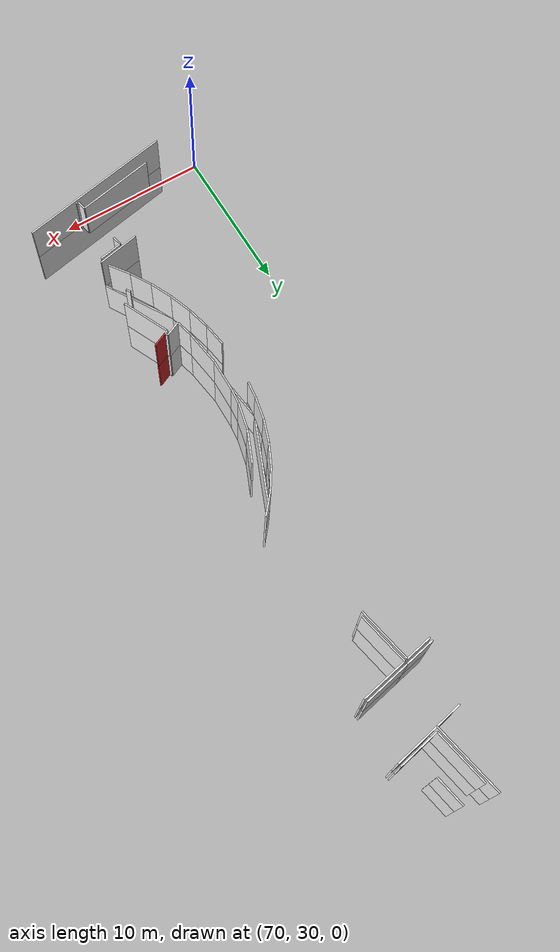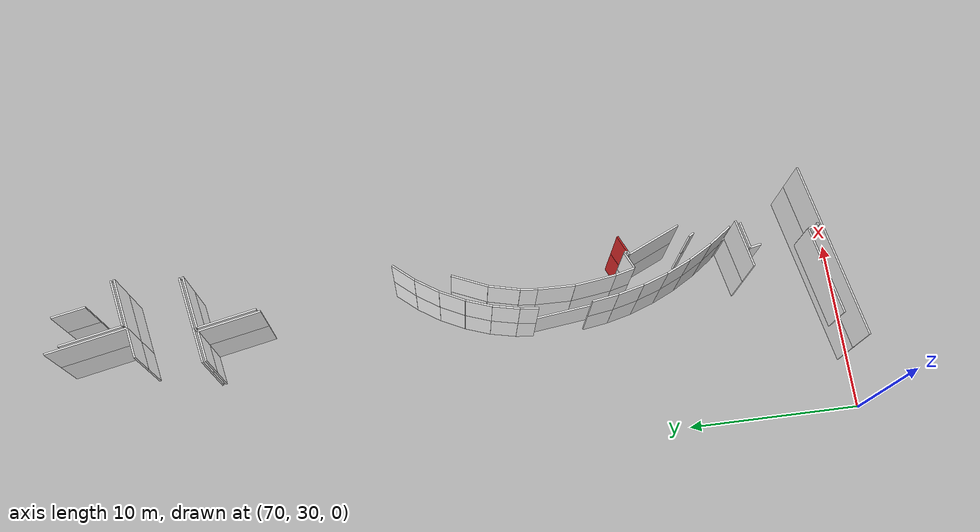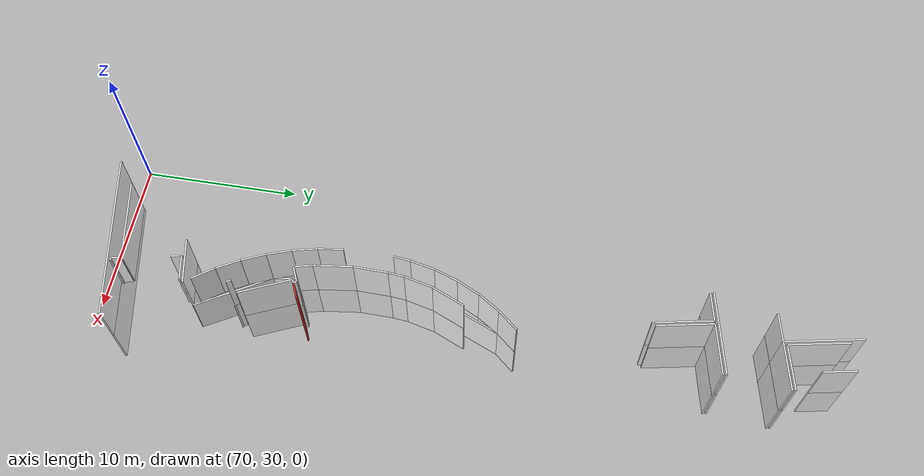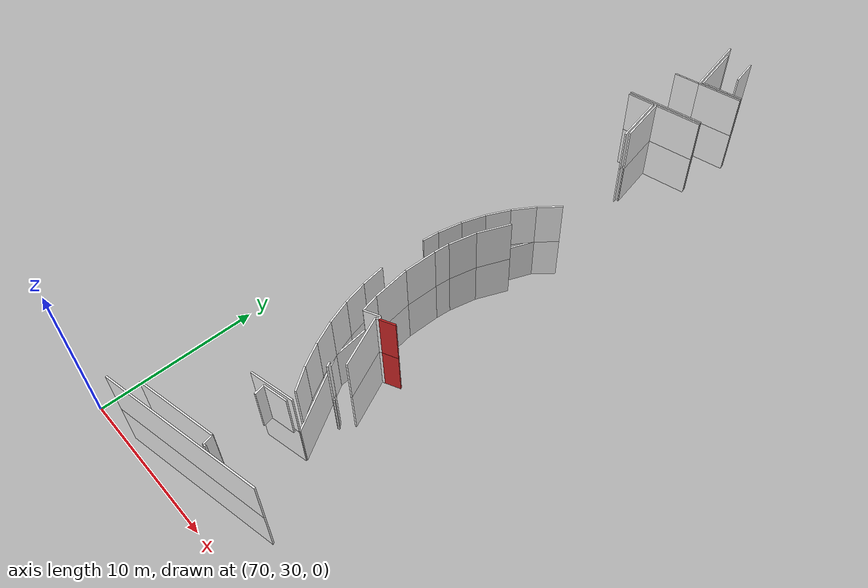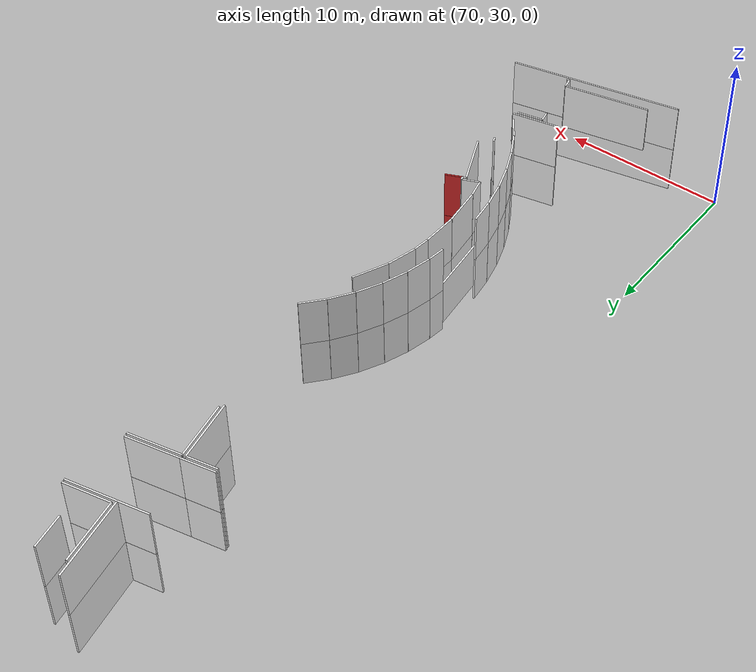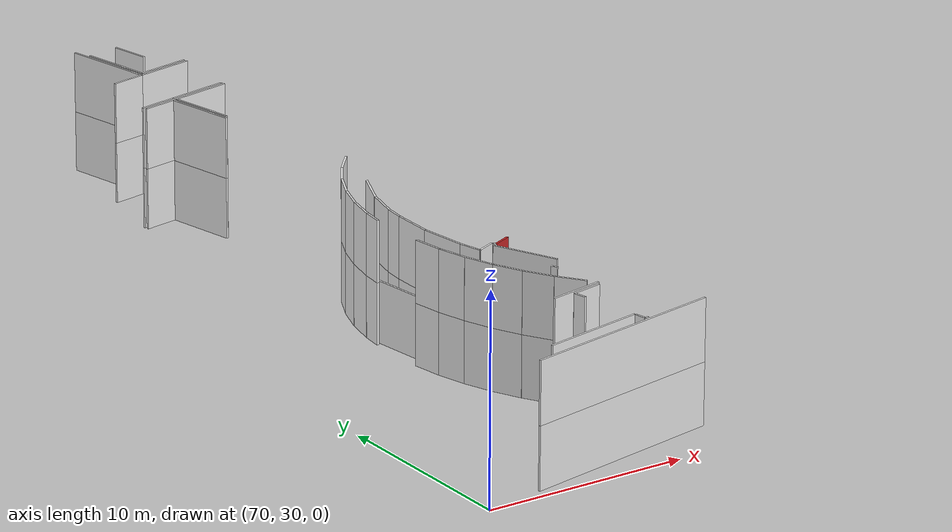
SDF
<sdf version="1.6">
 <world name="default">
  <model name="wall_79.8_43.2_1.5">
   <static>true</static>
   <pose>79.82500000001164 43.18500000005588 1.5 0 0 0.42331075582642225</pose>
   <link name="link">
    <visual name="visual">
     <geometry><box><size>0.9980981916532635 0.1 3</size></box></geometry>
     <material>
      <script><uri>file://media/materials/scripts/gazebo.material</uri><name>Gazebo/Red</name></script>
     </material>
    </visual>
    <collision name="collision"><geometry><box><size>0.9980981916532635 0.1 3</size></box></geometry></collision>
   </link>
  </model>
  <model name="wall_79.8_43.2_4.5">
   <static>true</static>
   <pose>79.82500000001164 43.18500000005588 4.5 0 0 0.42331075582642225</pose>
   <link name="link">
    <visual name="visual">
     <geometry><box><size>0.9980981916532635 0.1 3</size></box></geometry>
     <material>
      <script><uri>file://media/materials/scripts/gazebo.material</uri><name>Gazebo/Red</name></script>
     </material>
    </visual>
    <collision name="collision"><geometry><box><size>0.9980981916532635 0.1 3</size></box></geometry></collision>
   </link>
  </model>
  <model name="wall_79.7_74.2_1.5">
   <static>true</static>
   <pose>79.72999999998137 74.17500000004657 1.5 0 0 1.76520086863083</pose>
   <link name="link">
    <visual name="visual">
     <geometry><box><size>1.967053634411279 0.1 3</size></box></geometry>
     <material>
      <script><uri>file://media/materials/scripts/gazebo.material</uri><name>Gazebo/White</name></script>
     </material>
    </visual>
    <collision name="collision"><geometry><box><size>1.967053634411279 0.1 3</size></box></geometry></collision>
   </link>
  </model>
  <model name="wall_78.2_73.0_1.5">
   <static>true</static>
   <pose>78.22500000000582 73.0250000001397 1.5 0 0 -1.374478352720188</pose>
   <link name="link">
    <visual name="visual">
     <geometry><box><size>3.6399175813241733 0.1 3</size></box></geometry>
     <material>
      <script><uri>file://media/materials/scripts/gazebo.material</uri><name>Gazebo/White</name></script>
     </material>
    </visual>
    <collision name="collision"><geometry><box><size>3.6399175813241733 0.1 3</size></box></geometry></collision>
   </link>
  </model>
  <model name="wall_79.9_71.5_1.5">
   <static>true</static>
   <pose>79.93000000002212 71.50500000012107 1.5 0 0 0.19383178298877288</pose>
   <link name="link">
    <visual name="visual">
     <geometry><box><size>2.7515268488324223 0.1 3</size></box></geometry>
     <material>
      <script><uri>file://media/materials/scripts/gazebo.material</uri><name>Gazebo/White</name></script>
     </material>
    </visual>
    <collision name="collision"><geometry><box><size>2.7515268488324223 0.1 3</size></box></geometry></collision>
   </link>
  </model>
  <model name="wall_79.5_67.5_1.5">
   <static>true</static>
   <pose>79.48500000001513 67.47999999998137 1.5 0 0 -2.9473516575252563</pose>
   <link name="link">
    <visual name="visual">
     <geometry><box><size>3.1084562083905816 0.1 3</size></box></geometry>
     <material>
      <script><uri>file://media/materials/scripts/gazebo.material</uri><name>Gazebo/White</name></script>
     </material>
    </visual>
    <collision name="collision"><geometry><box><size>3.1084562083905816 0.1 3</size></box></geometry></collision>
   </link>
  </model>
  <model name="wall_78.3_65.5_1.5">
   <static>true</static>
   <pose>78.29000000000815 65.52000000001863 1.5 0 0 -1.3745595150025516</pose>
   <link name="link">
    <visual name="visual">
     <geometry><box><size>3.384966765264479 0.1 3</size></box></geometry>
     <material>
      <script><uri>file://media/materials/scripts/gazebo.material</uri><name>Gazebo/White</name></script>
     </material>
    </visual>
    <collision name="collision"><geometry><box><size>3.384966765264479 0.1 3</size></box></geometry></collision>
   </link>
  </model>
  <model name="wall_79.3_42.9_1.5">
   <static>true</static>
   <pose>79.26999999998952 42.93500000005588 1.5 0 0 0.4228539254915673</pose>
   <link name="link">
    <visual name="visual">
     <geometry><box><size>0.21931712194408015 0.1 3</size></box></geometry>
     <material>
      <script><uri>file://media/materials/scripts/gazebo.material</uri><name>Gazebo/White</name></script>
     </material>
    </visual>
    <collision name="collision"><geometry><box><size>0.21931712194408015 0.1 3</size></box></geometry></collision>
   </link>
  </model>
  <model name="wall_80.0_39.1_1.5">
   <static>true</static>
   <pose>80.00499999997555 39.14500000001863 1.5 0 0 -2.521343169416129</pose>
   <link name="link">
    <visual name="visual">
     <geometry><box><size>0.08602325256784608 0.1 3</size></box></geometry>
     <material>
      <script><uri>file://media/materials/scripts/gazebo.material</uri><name>Gazebo/White</name></script>
     </material>
    </visual>
    <collision name="collision"><geometry><box><size>0.08602325256784608 0.1 3</size></box></geometry></collision>
   </link>
  </model>
  <model name="wall_79.9_39.2_1.5">
   <static>true</static>
   <pose>79.875 39.24499999987893 1.5 0 0 2.1327178891317615</pose>
   <link name="link">
    <visual name="visual">
     <geometry><box><size>0.3190611227089686 0.1 3</size></box></geometry>
     <material>
      <script><uri>file://media/materials/scripts/gazebo.material</uri><name>Gazebo/White</name></script>
     </material>
    </visual>
    <collision name="collision"><geometry><box><size>0.3190611227089686 0.1 3</size></box></geometry></collision>
   </link>
  </model>
  <model name="wall_79.8_41.4_1.5">
   <static>true</static>
   <pose>79.84500000000116 41.4000000001397 1.5 0 0 1.9961589584783586</pose>
   <link name="link">
    <visual name="visual">
     <geometry><box><size>3.2715286946599265 0.1 3</size></box></geometry>
     <material>
      <script><uri>file://media/materials/scripts/gazebo.material</uri><name>Gazebo/White</name></script>
     </material>
    </visual>
    <collision name="collision"><geometry><box><size>3.2715286946599265 0.1 3</size></box></geometry></collision>
   </link>
  </model>
  <model name="wall_78.1_50.1_1.5">
   <static>true</static>
   <pose>78.11000000001513 50.10499999998137 1.5 0 0 1.3352513460828392</pose>
   <link name="link">
    <visual name="visual">
     <geometry><box><size>1.7996944185017383 0.1 3</size></box></geometry>
     <material>
      <script><uri>file://media/materials/scripts/gazebo.material</uri><name>Gazebo/White</name></script>
     </material>
    </visual>
    <collision name="collision"><geometry><box><size>1.7996944185017383 0.1 3</size></box></geometry></collision>
   </link>
  </model>
  <model name="wall_78.8_52.0_1.5">
   <static>true</static>
   <pose>78.75 51.96500000008382 1.5 0 0 1.1591850326473987</pose>
   <link name="link">
    <visual name="visual">
     <geometry><box><size>2.1495348335821967 0.1 3</size></box></geometry>
     <material>
      <script><uri>file://media/materials/scripts/gazebo.material</uri><name>Gazebo/White</name></script>
     </material>
    </visual>
    <collision name="collision"><geometry><box><size>2.1495348335821967 0.1 3</size></box></geometry></collision>
   </link>
  </model>
  <model name="wall_79.3_43.1_1.5">
   <static>true</static>
   <pose>79.32500000001164 43.07000000006519 1.5 0 0 2.0344439352783015</pose>
   <link name="link">
    <visual name="visual">
     <geometry><box><size>0.20124611811034362 0.1 3</size></box></geometry>
     <material>
      <script><uri>file://media/materials/scripts/gazebo.material</uri><name>Gazebo/White</name></script>
     </material>
    </visual>
    <collision name="collision"><geometry><box><size>0.20124611811034362 0.1 3</size></box></geometry></collision>
   </link>
  </model>
  <model name="wall_78.8_43.0_1.5">
   <static>true</static>
   <pose>78.81000000002678 42.950000000186265 1.5 0 0 -2.7213959400475116</pose>
   <link name="link">
    <visual name="visual">
     <geometry><box><size>1.029563014070432 0.1 3</size></box></geometry>
     <material>
      <script><uri>file://media/materials/scripts/gazebo.material</uri><name>Gazebo/White</name></script>
     </material>
    </visual>
    <collision name="collision"><geometry><box><size>1.029563014070432 0.1 3</size></box></geometry></collision>
   </link>
  </model>
  <model name="wall_78.2_43.3_1.5">
   <static>true</static>
   <pose>78.2050000000163 43.28500000014901 1.5 0 0 1.8136151661143607</pose>
   <link name="link">
    <visual name="visual">
     <geometry><box><size>1.1229425629502219 0.1 3</size></box></geometry>
     <material>
      <script><uri>file://media/materials/scripts/gazebo.material</uri><name>Gazebo/White</name></script>
     </material>
    </visual>
    <collision name="collision"><geometry><box><size>1.1229425629502219 0.1 3</size></box></geometry></collision>
   </link>
  </model>
  <model name="wall_77.9_45.0_1.5">
   <static>true</static>
   <pose>77.91500000000815 45.0 1.5 0 0 1.7025079936748562</pose>
   <link name="link">
    <visual name="visual">
     <geometry><box><size>2.360444873175644 0.1 3</size></box></geometry>
     <material>
      <script><uri>file://media/materials/scripts/gazebo.material</uri><name>Gazebo/White</name></script>
     </material>
    </visual>
    <collision name="collision"><geometry><box><size>2.360444873175644 0.1 3</size></box></geometry></collision>
   </link>
  </model>
  <model name="wall_77.8_47.2_1.5">
   <static>true</static>
   <pose>77.77999999999884 47.21499999985099 1.5 0 0 1.5516599071002037</pose>
   <link name="link">
    <visual name="visual">
     <geometry><box><size>2.090382739924786 0.1 3</size></box></geometry>
     <material>
      <script><uri>file://media/materials/scripts/gazebo.material</uri><name>Gazebo/White</name></script>
     </material>
    </visual>
    <collision name="collision"><geometry><box><size>2.090382739924786 0.1 3</size></box></geometry></collision>
   </link>
  </model>
  <model name="wall_77.9_48.7_1.5">
   <static>true</static>
   <pose>77.85000000000582 48.74499999987893 1.5 0 0 1.4680664593621482</pose>
   <link name="link">
    <visual name="visual">
     <geometry><box><size>0.9751410156507998 0.1 3</size></box></geometry>
     <material>
      <script><uri>file://media/materials/scripts/gazebo.material</uri><name>Gazebo/White</name></script>
     </material>
    </visual>
    <collision name="collision"><geometry><box><size>0.9751410156507998 0.1 3</size></box></geometry></collision>
   </link>
  </model>
  <model name="wall_77.6_70.8_1.5">
   <static>true</static>
   <pose>77.57000000000698 70.83999999985099 1.5 0 0 0.1951584270363837</pose>
   <link name="link">
    <visual name="visual">
     <geometry><box><size>1.7532826354591435 0.1 3</size></box></geometry>
     <material>
      <script><uri>file://media/materials/scripts/gazebo.material</uri><name>Gazebo/White</name></script>
     </material>
    </visual>
    <collision name="collision"><geometry><box><size>1.7532826354591435 0.1 3</size></box></geometry></collision>
   </link>
  </model>
  <model name="wall_78.0_73.3_1.5">
   <static>true</static>
   <pose>77.97000000000116 73.29999999981374 1.5 0 0 1.769031517003461</pose>
   <link name="link">
    <visual name="visual">
     <geometry><box><size>4.6714879857120994 0.1 3</size></box></geometry>
     <material>
      <script><uri>file://media/materials/scripts/gazebo.material</uri><name>Gazebo/White</name></script>
     </material>
    </visual>
    <collision name="collision"><geometry><box><size>4.6714879857120994 0.1 3</size></box></geometry></collision>
   </link>
  </model>
  <model name="wall_79.4_67.7_1.5">
   <static>true</static>
   <pose>79.44000000000233 67.67999999993481 1.5 0 0 -2.946728733873762</pose>
   <link name="link">
    <visual name="visual">
     <geometry><box><size>3.0986448651528713 0.1 3</size></box></geometry>
     <material>
      <script><uri>file://media/materials/scripts/gazebo.material</uri><name>Gazebo/White</name></script>
     </material>
    </visual>
    <collision name="collision"><geometry><box><size>3.0986448651528713 0.1 3</size></box></geometry></collision>
   </link>
  </model>
  <model name="wall_76.9_67.2_1.5">
   <static>true</static>
   <pose>76.94999999998254 67.18999999994412 1.5 0 0 -2.9481653269346513</pose>
   <link name="link">
    <visual name="visual">
     <geometry><box><size>1.976866206885053 0.1 3</size></box></geometry>
     <material>
      <script><uri>file://media/materials/scripts/gazebo.material</uri><name>Gazebo/White</name></script>
     </material>
    </visual>
    <collision name="collision"><geometry><box><size>1.976866206885053 0.1 3</size></box></geometry></collision>
   </link>
  </model>
  <model name="wall_79.9_71.3_1.5">
   <static>true</static>
   <pose>79.875 71.2949999999255 1.5 0 0 0.1947324503984289</pose>
   <link name="link">
    <visual name="visual">
     <geometry><box><size>2.9456747954281193 0.1 3</size></box></geometry>
     <material>
      <script><uri>file://media/materials/scripts/gazebo.material</uri><name>Gazebo/White</name></script>
     </material>
    </visual>
    <collision name="collision"><geometry><box><size>2.9456747954281193 0.1 3</size></box></geometry></collision>
   </link>
  </model>
  <model name="wall_79.6_32.1_4.5">
   <static>true</static>
   <pose>79.61500000001979 32.05499999993481 4.5 0 0 -2.966920455733987</pose>
   <link name="link">
    <visual name="visual">
     <geometry><box><size>0.1726267649646635 0.1 3</size></box></geometry>
     <material>
      <script><uri>file://media/materials/scripts/gazebo.material</uri><name>Gazebo/White</name></script>
     </material>
    </visual>
    <collision name="collision"><geometry><box><size>0.1726267649646635 0.1 3</size></box></geometry></collision>
   </link>
  </model>
  <model name="wall_79.5_32.3_4.5">
   <static>true</static>
   <pose>79.47000000000116 32.34000000008382 4.5 0 0 1.7681918867007462</pose>
   <link name="link">
    <visual name="visual">
     <geometry><box><size>0.6118823417329601 0.1 3</size></box></geometry>
     <material>
      <script><uri>file://media/materials/scripts/gazebo.material</uri><name>Gazebo/White</name></script>
     </material>
    </visual>
    <collision name="collision"><geometry><box><size>0.6118823417329601 0.1 3</size></box></geometry></collision>
   </link>
  </model>
  <model name="wall_76.9_32.1_4.5">
   <static>true</static>
   <pose>76.87999999997555 32.14500000001863 4.5 0 0 -2.948381169699356</pose>
   <link name="link">
    <visual name="visual">
     <geometry><box><size>5.155938323954138 0.1 3</size></box></geometry>
     <material>
      <script><uri>file://media/materials/scripts/gazebo.material</uri><name>Gazebo/White</name></script>
     </material>
    </visual>
    <collision name="collision"><geometry><box><size>5.155938323954138 0.1 3</size></box></geometry></collision>
   </link>
  </model>
  <model name="wall_78.8_35.8_4.5">
   <static>true</static>
   <pose>78.77500000002328 35.78500000014901 4.5 0 0 1.7742893720946593</pose>
   <link name="link">
    <visual name="visual">
     <geometry><box><size>0.6432728813345039 0.1 3</size></box></geometry>
     <material>
      <script><uri>file://media/materials/scripts/gazebo.material</uri><name>Gazebo/White</name></script>
     </material>
    </visual>
    <collision name="collision"><geometry><box><size>0.6432728813345039 0.1 3</size></box></geometry></collision>
   </link>
  </model>
  <model name="wall_79.5_36.2_4.5">
   <static>true</static>
   <pose>79.47000000000116 36.25 4.5 0 0 0.194863919575871</pose>
   <link name="link">
    <visual name="visual">
     <geometry><box><size>1.549322432474246 0.1 3</size></box></geometry>
     <material>
      <script><uri>file://media/materials/scripts/gazebo.material</uri><name>Gazebo/White</name></script>
     </material>
    </visual>
    <collision name="collision"><geometry><box><size>1.549322432474246 0.1 3</size></box></geometry></collision>
   </link>
  </model>
  <model name="wall_76.9_67.0_1.5">
   <static>true</static>
   <pose>76.90000000002328 66.96999999997206 1.5 0 0 0.19297081014186676</pose>
   <link name="link">
    <visual name="visual">
     <geometry><box><size>1.77290721702601 0.1 3</size></box></geometry>
     <material>
      <script><uri>file://media/materials/scripts/gazebo.material</uri><name>Gazebo/White</name></script>
     </material>
    </visual>
    <collision name="collision"><geometry><box><size>1.77290721702601 0.1 3</size></box></geometry></collision>
   </link>
  </model>
  <model name="wall_78.1_65.4_1.5">
   <static>true</static>
   <pose>78.11999999999534 65.38500000000931 1.5 0 0 -1.3739487121216474</pose>
   <link name="link">
    <visual name="visual">
     <geometry><box><size>3.5791200038046584 0.1 3</size></box></geometry>
     <material>
      <script><uri>file://media/materials/scripts/gazebo.material</uri><name>Gazebo/White</name></script>
     </material>
    </visual>
    <collision name="collision"><geometry><box><size>3.5791200038046584 0.1 3</size></box></geometry></collision>
   </link>
  </model>
  <model name="wall_79.7_55.6_1.5">
   <static>true</static>
   <pose>79.69000000000233 55.57000000006519 1.5 0 0 -2.282255452669402</pose>
   <link name="link">
    <visual name="visual">
     <geometry><box><size>1.5315351772862982 0.1 3</size></box></geometry>
     <material>
      <script><uri>file://media/materials/scripts/gazebo.material</uri><name>Gazebo/White</name></script>
     </material>
    </visual>
    <collision name="collision"><geometry><box><size>1.5315351772862982 0.1 3</size></box></geometry></collision>
   </link>
  </model>
  <model name="wall_78.8_54.4_1.5">
   <static>true</static>
   <pose>78.76500000001397 54.35000000009313 1.5 0 0 -2.1569938780447484</pose>
   <link name="link">
    <visual name="visual">
     <geometry><box><size>1.5365220469059306 0.1 3</size></box></geometry>
     <material>
      <script><uri>file://media/materials/scripts/gazebo.material</uri><name>Gazebo/White</name></script>
     </material>
    </visual>
    <collision name="collision"><geometry><box><size>1.5365220469059306 0.1 3</size></box></geometry></collision>
   </link>
  </model>
  <model name="wall_78.0_53.0_1.5">
   <static>true</static>
   <pose>78.0 53.02000000001863 1.5 0 0 -2.0286300478758363</pose>
   <link name="link">
    <visual name="visual">
     <geometry><box><size>1.538440769012967 0.1 3</size></box></geometry>
     <material>
      <script><uri>file://media/materials/scripts/gazebo.material</uri><name>Gazebo/White</name></script>
     </material>
    </visual>
    <collision name="collision"><geometry><box><size>1.538440769012967 0.1 3</size></box></geometry></collision>
   </link>
  </model>
  <model name="wall_77.4_51.6_1.5">
   <static>true</static>
   <pose>77.40499999999884 51.610000000102445 1.5 0 0 -1.9111782654188452</pose>
   <link name="link">
    <visual name="visual">
     <geometry><box><size>1.527645246707885 0.1 3</size></box></geometry>
     <material>
      <script><uri>file://media/materials/scripts/gazebo.material</uri><name>Gazebo/White</name></script>
     </material>
    </visual>
    <collision name="collision"><geometry><box><size>1.527645246707885 0.1 3</size></box></geometry></collision>
   </link>
  </model>
  <model name="wall_77.0_50.1_1.5">
   <static>true</static>
   <pose>76.98500000001513 50.140000000130385 1.5 0 0 -1.7873466317813498</pose>
   <link name="link">
    <visual name="visual">
     <geometry><box><size>1.5358710883439264 0.1 3</size></box></geometry>
     <material>
      <script><uri>file://media/materials/scripts/gazebo.material</uri><name>Gazebo/White</name></script>
     </material>
    </visual>
    <collision name="collision"><geometry><box><size>1.5358710883439264 0.1 3</size></box></geometry></collision>
   </link>
  </model>
  <model name="wall_76.8_48.9_1.5">
   <static>true</static>
   <pose>76.76000000000931 48.875 1.5 0 0 -1.6867783112416597</pose>
   <link name="link">
    <visual name="visual">
     <geometry><box><size>1.0369667306794703 0.1 3</size></box></geometry>
     <material>
      <script><uri>file://media/materials/scripts/gazebo.material</uri><name>Gazebo/White</name></script>
     </material>
    </visual>
    <collision name="collision"><geometry><box><size>1.0369667306794703 0.1 3</size></box></geometry></collision>
   </link>
  </model>
  <model name="wall_76.8_44.6_1.5">
   <static>true</static>
   <pose>76.8299999999872 44.609999999869615 1.5 0 0 -1.4251679462043203</pose>
   <link name="link">
    <visual name="visual">
     <geometry><box><size>1.5160474926641705 0.1 3</size></box></geometry>
     <material>
      <script><uri>file://media/materials/scripts/gazebo.material</uri><name>Gazebo/White</name></script>
     </material>
    </visual>
    <collision name="collision"><geometry><box><size>1.5160474926641705 0.1 3</size></box></geometry></collision>
   </link>
  </model>
  <model name="wall_77.1_43.1_1.5">
   <static>true</static>
   <pose>77.11999999999534 43.125 1.5 0 0 -1.3306253189027035</pose>
   <link name="link">
    <visual name="visual">
     <geometry><box><size>1.513439790418924 0.1 3</size></box></geometry>
     <material>
      <script><uri>file://media/materials/scripts/gazebo.material</uri><name>Gazebo/White</name></script>
     </material>
    </visual>
    <collision name="collision"><geometry><box><size>1.513439790418924 0.1 3</size></box></geometry></collision>
   </link>
  </model>
  <model name="wall_77.5_41.7_1.5">
   <static>true</static>
   <pose>77.54999999998836 41.675000000046566 1.5 0 0 -1.2344330339143665</pose>
   <link name="link">
    <visual name="visual">
     <geometry><box><size>1.5148927356349178 0.1 3</size></box></geometry>
     <material>
      <script><uri>file://media/materials/scripts/gazebo.material</uri><name>Gazebo/White</name></script>
     </material>
    </visual>
    <collision name="collision"><geometry><box><size>1.5148927356349178 0.1 3</size></box></geometry></collision>
   </link>
  </model>
  <model name="wall_78.1_40.3_1.5">
   <static>true</static>
   <pose>78.11499999999069 40.27499999990687 1.5 0 0 -1.1397780825490453</pose>
   <link name="link">
    <visual name="visual">
     <geometry><box><size>1.507912464406368 0.1 3</size></box></geometry>
     <material>
      <script><uri>file://media/materials/scripts/gazebo.material</uri><name>Gazebo/White</name></script>
     </material>
    </visual>
    <collision name="collision"><geometry><box><size>1.507912464406368 0.1 3</size></box></geometry></collision>
   </link>
  </model>
  <model name="wall_78.8_38.9_1.5">
   <static>true</static>
   <pose>78.80999999999767 38.92999999993481 1.5 0 0 -1.048392895018153</pose>
   <link name="link">
    <visual name="visual">
     <geometry><box><size>1.5231546210321498 0.1 3</size></box></geometry>
     <material>
      <script><uri>file://media/materials/scripts/gazebo.material</uri><name>Gazebo/White</name></script>
     </material>
    </visual>
    <collision name="collision"><geometry><box><size>1.5231546210321498 0.1 3</size></box></geometry></collision>
   </link>
  </model>
  <model name="wall_79.6_37.7_1.5">
   <static>true</static>
   <pose>79.63000000000466 37.65500000002794 1.5 0 0 -0.9497782014457066</pose>
   <link name="link">
    <visual name="visual">
     <geometry><box><size>1.5123822268072231 0.1 3</size></box></geometry>
     <material>
      <script><uri>file://media/materials/scripts/gazebo.material</uri><name>Gazebo/White</name></script>
     </material>
    </visual>
    <collision name="collision"><geometry><box><size>1.5123822268072231 0.1 3</size></box></geometry></collision>
   </link>
  </model>
  <model name="wall_79.0_36.4_1.5">
   <static>true</static>
   <pose>79.0 36.360000000102445 1.5 0 0 -2.9414115856051164</pose>
   <link name="link">
    <visual name="visual">
     <geometry><box><size>2.816238626273348 0.1 3</size></box></geometry>
     <material>
      <script><uri>file://media/materials/scripts/gazebo.material</uri><name>Gazebo/White</name></script>
     </material>
    </visual>
    <collision name="collision"><geometry><box><size>2.816238626273348 0.1 3</size></box></geometry></collision>
   </link>
  </model>
  <model name="wall_78.0_31.5_1.5">
   <static>true</static>
   <pose>78.02499999999418 31.540000000037253 1.5 0 0 0.19417892004540582</pose>
   <link name="link">
    <visual name="visual">
     <geometry><box><size>10.364791363055433 0.1 3</size></box></geometry>
     <material>
      <script><uri>file://media/materials/scripts/gazebo.material</uri><name>Gazebo/White</name></script>
     </material>
    </visual>
    <collision name="collision"><geometry><box><size>10.364791363055433 0.1 3</size></box></geometry></collision>
   </link>
  </model>
  <model name="wall_79.1_38.8_1.5">
   <static>true</static>
   <pose>79.08999999999651 38.800000000046566 1.5 0 0 2.10917084016099</pose>
   <link name="link">
    <visual name="visual">
     <geometry><box><size>5.031779009320233 0.1 3</size></box></geometry>
     <material>
      <script><uri>file://media/materials/scripts/gazebo.material</uri><name>Gazebo/White</name></script>
     </material>
    </visual>
    <collision name="collision"><geometry><box><size>5.031779009320233 0.1 3</size></box></geometry></collision>
   </link>
  </model>
  <model name="wall_77.3_45.2_1.5">
   <static>true</static>
   <pose>77.30999999999767 45.175000000046566 1.5 0 0 1.686528325479706</pose>
   <link name="link">
    <visual name="visual">
     <geometry><box><size>8.486772060258827 0.1 3</size></box></geometry>
     <material>
      <script><uri>file://media/materials/scripts/gazebo.material</uri><name>Gazebo/White</name></script>
     </material>
    </visual>
    <collision name="collision"><geometry><box><size>8.486772060258827 0.1 3</size></box></geometry></collision>
   </link>
  </model>
  <model name="wall_78.0_52.2_1.5">
   <static>true</static>
   <pose>78.00500000000466 52.19000000017695 1.5 0 0 1.1704391671759413</pose>
   <link name="link">
    <visual name="visual">
     <geometry><box><size>6.080863425618191 0.1 3</size></box></geometry>
     <material>
      <script><uri>file://media/materials/scripts/gazebo.material</uri><name>Gazebo/White</name></script>
     </material>
    </visual>
    <collision name="collision"><geometry><box><size>6.080863425618191 0.1 3</size></box></geometry></collision>
   </link>
  </model>
  <model name="wall_78.3_65.6_1.5">
   <static>true</static>
   <pose>78.26999999998952 65.61999999987893 1.5 0 0 1.7670989909072092</pose>
   <link name="link">
    <visual name="visual">
     <geometry><box><size>3.5889274163944065 0.1 3</size></box></geometry>
     <material>
      <script><uri>file://media/materials/scripts/gazebo.material</uri><name>Gazebo/White</name></script>
     </material>
    </visual>
    <collision name="collision"><geometry><box><size>3.5889274163944065 0.1 3</size></box></geometry></collision>
   </link>
  </model>
  <model name="wall_79.7_74.2_4.5">
   <static>true</static>
   <pose>79.72999999998137 74.17500000004657 4.5 0 0 1.76520086863083</pose>
   <link name="link">
    <visual name="visual">
     <geometry><box><size>1.967053634411279 0.1 3</size></box></geometry>
     <material>
      <script><uri>file://media/materials/scripts/gazebo.material</uri><name>Gazebo/White</name></script>
     </material>
    </visual>
    <collision name="collision"><geometry><box><size>1.967053634411279 0.1 3</size></box></geometry></collision>
   </link>
  </model>
  <model name="wall_78.2_73.0_4.5">
   <static>true</static>
   <pose>78.22500000000582 73.0250000001397 4.5 0 0 -1.374478352720188</pose>
   <link name="link">
    <visual name="visual">
     <geometry><box><size>3.6399175813241733 0.1 3</size></box></geometry>
     <material>
      <script><uri>file://media/materials/scripts/gazebo.material</uri><name>Gazebo/White</name></script>
     </material>
    </visual>
    <collision name="collision"><geometry><box><size>3.6399175813241733 0.1 3</size></box></geometry></collision>
   </link>
  </model>
  <model name="wall_79.9_71.5_4.5">
   <static>true</static>
   <pose>79.93000000002212 71.50500000012107 4.5 0 0 0.19383178298877288</pose>
   <link name="link">
    <visual name="visual">
     <geometry><box><size>2.7515268488324223 0.1 3</size></box></geometry>
     <material>
      <script><uri>file://media/materials/scripts/gazebo.material</uri><name>Gazebo/White</name></script>
     </material>
    </visual>
    <collision name="collision"><geometry><box><size>2.7515268488324223 0.1 3</size></box></geometry></collision>
   </link>
  </model>
  <model name="wall_79.5_67.5_4.5">
   <static>true</static>
   <pose>79.48500000001513 67.47999999998137 4.5 0 0 -2.9473516575252563</pose>
   <link name="link">
    <visual name="visual">
     <geometry><box><size>3.1084562083905816 0.1 3</size></box></geometry>
     <material>
      <script><uri>file://media/materials/scripts/gazebo.material</uri><name>Gazebo/White</name></script>
     </material>
    </visual>
    <collision name="collision"><geometry><box><size>3.1084562083905816 0.1 3</size></box></geometry></collision>
   </link>
  </model>
  <model name="wall_78.3_65.5_4.5">
   <static>true</static>
   <pose>78.29000000000815 65.52000000001863 4.5 0 0 -1.3745595150025516</pose>
   <link name="link">
    <visual name="visual">
     <geometry><box><size>3.384966765264479 0.1 3</size></box></geometry>
     <material>
      <script><uri>file://media/materials/scripts/gazebo.material</uri><name>Gazebo/White</name></script>
     </material>
    </visual>
    <collision name="collision"><geometry><box><size>3.384966765264479 0.1 3</size></box></geometry></collision>
   </link>
  </model>
  <model name="wall_79.3_42.9_4.5">
   <static>true</static>
   <pose>79.26999999998952 42.93500000005588 4.5 0 0 0.4228539254915673</pose>
   <link name="link">
    <visual name="visual">
     <geometry><box><size>0.21931712194408015 0.1 3</size></box></geometry>
     <material>
      <script><uri>file://media/materials/scripts/gazebo.material</uri><name>Gazebo/White</name></script>
     </material>
    </visual>
    <collision name="collision"><geometry><box><size>0.21931712194408015 0.1 3</size></box></geometry></collision>
   </link>
  </model>
  <model name="wall_79.9_39.2_4.5">
   <static>true</static>
   <pose>79.875 39.24499999987893 4.5 0 0 2.1327178891317615</pose>
   <link name="link">
    <visual name="visual">
     <geometry><box><size>0.3190611227089686 0.1 3</size></box></geometry>
     <material>
      <script><uri>file://media/materials/scripts/gazebo.material</uri><name>Gazebo/White</name></script>
     </material>
    </visual>
    <collision name="collision"><geometry><box><size>0.3190611227089686 0.1 3</size></box></geometry></collision>
   </link>
  </model>
  <model name="wall_79.8_41.4_4.5">
   <static>true</static>
   <pose>79.84500000000116 41.4000000001397 4.5 0 0 1.9961589584783586</pose>
   <link name="link">
    <visual name="visual">
     <geometry><box><size>3.2715286946599265 0.1 3</size></box></geometry>
     <material>
      <script><uri>file://media/materials/scripts/gazebo.material</uri><name>Gazebo/White</name></script>
     </material>
    </visual>
    <collision name="collision"><geometry><box><size>3.2715286946599265 0.1 3</size></box></geometry></collision>
   </link>
  </model>
  <model name="wall_78.1_50.1_4.5">
   <static>true</static>
   <pose>78.11000000001513 50.10499999998137 4.5 0 0 1.3352513460828392</pose>
   <link name="link">
    <visual name="visual">
     <geometry><box><size>1.7996944185017383 0.1 3</size></box></geometry>
     <material>
      <script><uri>file://media/materials/scripts/gazebo.material</uri><name>Gazebo/White</name></script>
     </material>
    </visual>
    <collision name="collision"><geometry><box><size>1.7996944185017383 0.1 3</size></box></geometry></collision>
   </link>
  </model>
  <model name="wall_78.8_52.0_4.5">
   <static>true</static>
   <pose>78.75 51.96500000008382 4.5 0 0 1.1591850326473987</pose>
   <link name="link">
    <visual name="visual">
     <geometry><box><size>2.1495348335821967 0.1 3</size></box></geometry>
     <material>
      <script><uri>file://media/materials/scripts/gazebo.material</uri><name>Gazebo/White</name></script>
     </material>
    </visual>
    <collision name="collision"><geometry><box><size>2.1495348335821967 0.1 3</size></box></geometry></collision>
   </link>
  </model>
  <model name="wall_79.3_43.1_4.5">
   <static>true</static>
   <pose>79.32500000001164 43.07000000006519 4.5 0 0 2.0344439352783015</pose>
   <link name="link">
    <visual name="visual">
     <geometry><box><size>0.20124611811034362 0.1 3</size></box></geometry>
     <material>
      <script><uri>file://media/materials/scripts/gazebo.material</uri><name>Gazebo/White</name></script>
     </material>
    </visual>
    <collision name="collision"><geometry><box><size>0.20124611811034362 0.1 3</size></box></geometry></collision>
   </link>
  </model>
  <model name="wall_78.8_43.0_4.5">
   <static>true</static>
   <pose>78.81000000002678 42.950000000186265 4.5 0 0 -2.7213959400475116</pose>
   <link name="link">
    <visual name="visual">
     <geometry><box><size>1.029563014070432 0.1 3</size></box></geometry>
     <material>
      <script><uri>file://media/materials/scripts/gazebo.material</uri><name>Gazebo/White</name></script>
     </material>
    </visual>
    <collision name="collision"><geometry><box><size>1.029563014070432 0.1 3</size></box></geometry></collision>
   </link>
  </model>
  <model name="wall_78.2_43.3_4.5">
   <static>true</static>
   <pose>78.2050000000163 43.28500000014901 4.5 0 0 1.8136151661143607</pose>
   <link name="link">
    <visual name="visual">
     <geometry><box><size>1.1229425629502219 0.1 3</size></box></geometry>
     <material>
      <script><uri>file://media/materials/scripts/gazebo.material</uri><name>Gazebo/White</name></script>
     </material>
    </visual>
    <collision name="collision"><geometry><box><size>1.1229425629502219 0.1 3</size></box></geometry></collision>
   </link>
  </model>
  <model name="wall_77.9_45.0_4.5">
   <static>true</static>
   <pose>77.91500000000815 45.0 4.5 0 0 1.7025079936748562</pose>
   <link name="link">
    <visual name="visual">
     <geometry><box><size>2.360444873175644 0.1 3</size></box></geometry>
     <material>
      <script><uri>file://media/materials/scripts/gazebo.material</uri><name>Gazebo/White</name></script>
     </material>
    </visual>
    <collision name="collision"><geometry><box><size>2.360444873175644 0.1 3</size></box></geometry></collision>
   </link>
  </model>
  <model name="wall_77.8_47.2_4.5">
   <static>true</static>
   <pose>77.77999999999884 47.21499999985099 4.5 0 0 1.5516599071002037</pose>
   <link name="link">
    <visual name="visual">
     <geometry><box><size>2.090382739924786 0.1 3</size></box></geometry>
     <material>
      <script><uri>file://media/materials/scripts/gazebo.material</uri><name>Gazebo/White</name></script>
     </material>
    </visual>
    <collision name="collision"><geometry><box><size>2.090382739924786 0.1 3</size></box></geometry></collision>
   </link>
  </model>
  <model name="wall_77.9_48.7_4.5">
   <static>true</static>
   <pose>77.85000000000582 48.74499999987893 4.5 0 0 1.4680664593621482</pose>
   <link name="link">
    <visual name="visual">
     <geometry><box><size>0.9751410156507998 0.1 3</size></box></geometry>
     <material>
      <script><uri>file://media/materials/scripts/gazebo.material</uri><name>Gazebo/White</name></script>
     </material>
    </visual>
    <collision name="collision"><geometry><box><size>0.9751410156507998 0.1 3</size></box></geometry></collision>
   </link>
  </model>
  <model name="wall_77.6_70.8_4.5">
   <static>true</static>
   <pose>77.57000000000698 70.83999999985099 4.5 0 0 0.1951584270363837</pose>
   <link name="link">
    <visual name="visual">
     <geometry><box><size>1.7532826354591435 0.1 3</size></box></geometry>
     <material>
      <script><uri>file://media/materials/scripts/gazebo.material</uri><name>Gazebo/White</name></script>
     </material>
    </visual>
    <collision name="collision"><geometry><box><size>1.7532826354591435 0.1 3</size></box></geometry></collision>
   </link>
  </model>
  <model name="wall_78.0_73.3_4.5">
   <static>true</static>
   <pose>77.97000000000116 73.29999999981374 4.5 0 0 1.769031517003461</pose>
   <link name="link">
    <visual name="visual">
     <geometry><box><size>4.6714879857120994 0.1 3</size></box></geometry>
     <material>
      <script><uri>file://media/materials/scripts/gazebo.material</uri><name>Gazebo/White</name></script>
     </material>
    </visual>
    <collision name="collision"><geometry><box><size>4.6714879857120994 0.1 3</size></box></geometry></collision>
   </link>
  </model>
  <model name="wall_79.4_67.7_4.5">
   <static>true</static>
   <pose>79.44000000000233 67.67999999993481 4.5 0 0 -2.946728733873762</pose>
   <link name="link">
    <visual name="visual">
     <geometry><box><size>3.0986448651528713 0.1 3</size></box></geometry>
     <material>
      <script><uri>file://media/materials/scripts/gazebo.material</uri><name>Gazebo/White</name></script>
     </material>
    </visual>
    <collision name="collision"><geometry><box><size>3.0986448651528713 0.1 3</size></box></geometry></collision>
   </link>
  </model>
  <model name="wall_76.9_67.2_4.5">
   <static>true</static>
   <pose>76.94999999998254 67.18999999994412 4.5 0 0 -2.9481653269346513</pose>
   <link name="link">
    <visual name="visual">
     <geometry><box><size>1.976866206885053 0.1 3</size></box></geometry>
     <material>
      <script><uri>file://media/materials/scripts/gazebo.material</uri><name>Gazebo/White</name></script>
     </material>
    </visual>
    <collision name="collision"><geometry><box><size>1.976866206885053 0.1 3</size></box></geometry></collision>
   </link>
  </model>
  <model name="wall_79.9_71.3_4.5">
   <static>true</static>
   <pose>79.875 71.2949999999255 4.5 0 0 0.1947324503984289</pose>
   <link name="link">
    <visual name="visual">
     <geometry><box><size>2.9456747954281193 0.1 3</size></box></geometry>
     <material>
      <script><uri>file://media/materials/scripts/gazebo.material</uri><name>Gazebo/White</name></script>
     </material>
    </visual>
    <collision name="collision"><geometry><box><size>2.9456747954281193 0.1 3</size></box></geometry></collision>
   </link>
  </model>
  <model name="wall_76.9_67.0_4.5">
   <static>true</static>
   <pose>76.90000000002328 66.96999999997206 4.5 0 0 0.19297081014186676</pose>
   <link name="link">
    <visual name="visual">
     <geometry><box><size>1.77290721702601 0.1 3</size></box></geometry>
     <material>
      <script><uri>file://media/materials/scripts/gazebo.material</uri><name>Gazebo/White</name></script>
     </material>
    </visual>
    <collision name="collision"><geometry><box><size>1.77290721702601 0.1 3</size></box></geometry></collision>
   </link>
  </model>
  <model name="wall_78.1_65.4_4.5">
   <static>true</static>
   <pose>78.11999999999534 65.38500000000931 4.5 0 0 -1.3739487121216474</pose>
   <link name="link">
    <visual name="visual">
     <geometry><box><size>3.5791200038046584 0.1 3</size></box></geometry>
     <material>
      <script><uri>file://media/materials/scripts/gazebo.material</uri><name>Gazebo/White</name></script>
     </material>
    </visual>
    <collision name="collision"><geometry><box><size>3.5791200038046584 0.1 3</size></box></geometry></collision>
   </link>
  </model>
  <model name="wall_79.7_55.6_4.5">
   <static>true</static>
   <pose>79.69000000000233 55.57000000006519 4.5 0 0 -2.282255452669402</pose>
   <link name="link">
    <visual name="visual">
     <geometry><box><size>1.5315351772862982 0.1 3</size></box></geometry>
     <material>
      <script><uri>file://media/materials/scripts/gazebo.material</uri><name>Gazebo/White</name></script>
     </material>
    </visual>
    <collision name="collision"><geometry><box><size>1.5315351772862982 0.1 3</size></box></geometry></collision>
   </link>
  </model>
  <model name="wall_78.8_54.4_4.5">
   <static>true</static>
   <pose>78.76500000001397 54.35000000009313 4.5 0 0 -2.1569938780447484</pose>
   <link name="link">
    <visual name="visual">
     <geometry><box><size>1.5365220469059306 0.1 3</size></box></geometry>
     <material>
      <script><uri>file://media/materials/scripts/gazebo.material</uri><name>Gazebo/White</name></script>
     </material>
    </visual>
    <collision name="collision"><geometry><box><size>1.5365220469059306 0.1 3</size></box></geometry></collision>
   </link>
  </model>
  <model name="wall_78.0_53.0_4.5">
   <static>true</static>
   <pose>78.0 53.02000000001863 4.5 0 0 -2.0286300478758363</pose>
   <link name="link">
    <visual name="visual">
     <geometry><box><size>1.538440769012967 0.1 3</size></box></geometry>
     <material>
      <script><uri>file://media/materials/scripts/gazebo.material</uri><name>Gazebo/White</name></script>
     </material>
    </visual>
    <collision name="collision"><geometry><box><size>1.538440769012967 0.1 3</size></box></geometry></collision>
   </link>
  </model>
  <model name="wall_77.4_51.6_4.5">
   <static>true</static>
   <pose>77.40499999999884 51.610000000102445 4.5 0 0 -1.9111782654188452</pose>
   <link name="link">
    <visual name="visual">
     <geometry><box><size>1.527645246707885 0.1 3</size></box></geometry>
     <material>
      <script><uri>file://media/materials/scripts/gazebo.material</uri><name>Gazebo/White</name></script>
     </material>
    </visual>
    <collision name="collision"><geometry><box><size>1.527645246707885 0.1 3</size></box></geometry></collision>
   </link>
  </model>
  <model name="wall_77.0_50.1_4.5">
   <static>true</static>
   <pose>76.98500000001513 50.140000000130385 4.5 0 0 -1.7873466317813498</pose>
   <link name="link">
    <visual name="visual">
     <geometry><box><size>1.5358710883439264 0.1 3</size></box></geometry>
     <material>
      <script><uri>file://media/materials/scripts/gazebo.material</uri><name>Gazebo/White</name></script>
     </material>
    </visual>
    <collision name="collision"><geometry><box><size>1.5358710883439264 0.1 3</size></box></geometry></collision>
   </link>
  </model>
  <model name="wall_76.8_48.9_4.5">
   <static>true</static>
   <pose>76.76000000000931 48.875 4.5 0 0 -1.6867783112416597</pose>
   <link name="link">
    <visual name="visual">
     <geometry><box><size>1.0369667306794703 0.1 3</size></box></geometry>
     <material>
      <script><uri>file://media/materials/scripts/gazebo.material</uri><name>Gazebo/White</name></script>
     </material>
    </visual>
    <collision name="collision"><geometry><box><size>1.0369667306794703 0.1 3</size></box></geometry></collision>
   </link>
  </model>
  <model name="wall_76.8_44.6_4.5">
   <static>true</static>
   <pose>76.8299999999872 44.609999999869615 4.5 0 0 -1.4251679462043203</pose>
   <link name="link">
    <visual name="visual">
     <geometry><box><size>1.5160474926641705 0.1 3</size></box></geometry>
     <material>
      <script><uri>file://media/materials/scripts/gazebo.material</uri><name>Gazebo/White</name></script>
     </material>
    </visual>
    <collision name="collision"><geometry><box><size>1.5160474926641705 0.1 3</size></box></geometry></collision>
   </link>
  </model>
  <model name="wall_77.1_43.1_4.5">
   <static>true</static>
   <pose>77.11999999999534 43.125 4.5 0 0 -1.3306253189027035</pose>
   <link name="link">
    <visual name="visual">
     <geometry><box><size>1.513439790418924 0.1 3</size></box></geometry>
     <material>
      <script><uri>file://media/materials/scripts/gazebo.material</uri><name>Gazebo/White</name></script>
     </material>
    </visual>
    <collision name="collision"><geometry><box><size>1.513439790418924 0.1 3</size></box></geometry></collision>
   </link>
  </model>
  <model name="wall_77.5_41.7_4.5">
   <static>true</static>
   <pose>77.54999999998836 41.675000000046566 4.5 0 0 -1.2344330339143665</pose>
   <link name="link">
    <visual name="visual">
     <geometry><box><size>1.5148927356349178 0.1 3</size></box></geometry>
     <material>
      <script><uri>file://media/materials/scripts/gazebo.material</uri><name>Gazebo/White</name></script>
     </material>
    </visual>
    <collision name="collision"><geometry><box><size>1.5148927356349178 0.1 3</size></box></geometry></collision>
   </link>
  </model>
  <model name="wall_78.1_40.3_4.5">
   <static>true</static>
   <pose>78.11499999999069 40.27499999990687 4.5 0 0 -1.1397780825490453</pose>
   <link name="link">
    <visual name="visual">
     <geometry><box><size>1.507912464406368 0.1 3</size></box></geometry>
     <material>
      <script><uri>file://media/materials/scripts/gazebo.material</uri><name>Gazebo/White</name></script>
     </material>
    </visual>
    <collision name="collision"><geometry><box><size>1.507912464406368 0.1 3</size></box></geometry></collision>
   </link>
  </model>
  <model name="wall_78.8_38.9_4.5">
   <static>true</static>
   <pose>78.80999999999767 38.92999999993481 4.5 0 0 -1.048392895018153</pose>
   <link name="link">
    <visual name="visual">
     <geometry><box><size>1.5231546210321498 0.1 3</size></box></geometry>
     <material>
      <script><uri>file://media/materials/scripts/gazebo.material</uri><name>Gazebo/White</name></script>
     </material>
    </visual>
    <collision name="collision"><geometry><box><size>1.5231546210321498 0.1 3</size></box></geometry></collision>
   </link>
  </model>
  <model name="wall_79.6_37.7_4.5">
   <static>true</static>
   <pose>79.63000000000466 37.65500000002794 4.5 0 0 -0.9497782014457066</pose>
   <link name="link">
    <visual name="visual">
     <geometry><box><size>1.5123822268072231 0.1 3</size></box></geometry>
     <material>
      <script><uri>file://media/materials/scripts/gazebo.material</uri><name>Gazebo/White</name></script>
     </material>
    </visual>
    <collision name="collision"><geometry><box><size>1.5123822268072231 0.1 3</size></box></geometry></collision>
   </link>
  </model>
  <model name="wall_79.0_36.4_4.5">
   <static>true</static>
   <pose>79.0 36.360000000102445 4.5 0 0 -2.9414115856051164</pose>
   <link name="link">
    <visual name="visual">
     <geometry><box><size>2.816238626273348 0.1 3</size></box></geometry>
     <material>
      <script><uri>file://media/materials/scripts/gazebo.material</uri><name>Gazebo/White</name></script>
     </material>
    </visual>
    <collision name="collision"><geometry><box><size>2.816238626273348 0.1 3</size></box></geometry></collision>
   </link>
  </model>
  <model name="wall_78.0_31.5_4.5">
   <static>true</static>
   <pose>78.02499999999418 31.540000000037253 4.5 0 0 0.19417892004540582</pose>
   <link name="link">
    <visual name="visual">
     <geometry><box><size>10.364791363055433 0.1 3</size></box></geometry>
     <material>
      <script><uri>file://media/materials/scripts/gazebo.material</uri><name>Gazebo/White</name></script>
     </material>
    </visual>
    <collision name="collision"><geometry><box><size>10.364791363055433 0.1 3</size></box></geometry></collision>
   </link>
  </model>
 </world>
</sdf>
